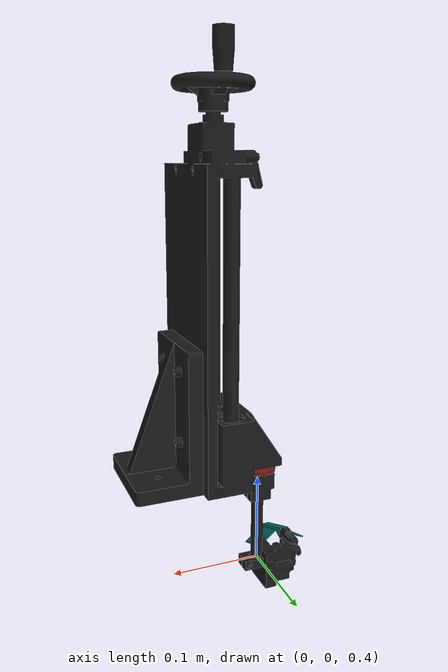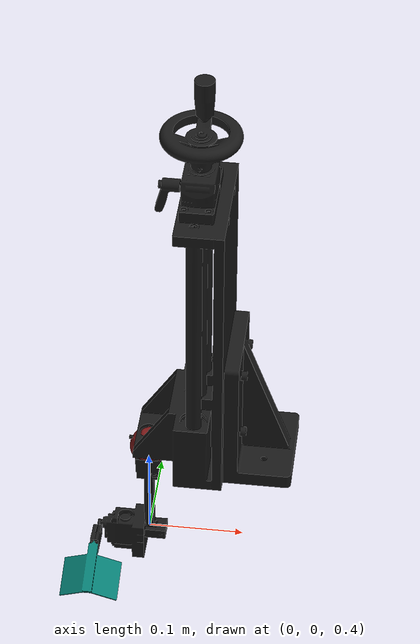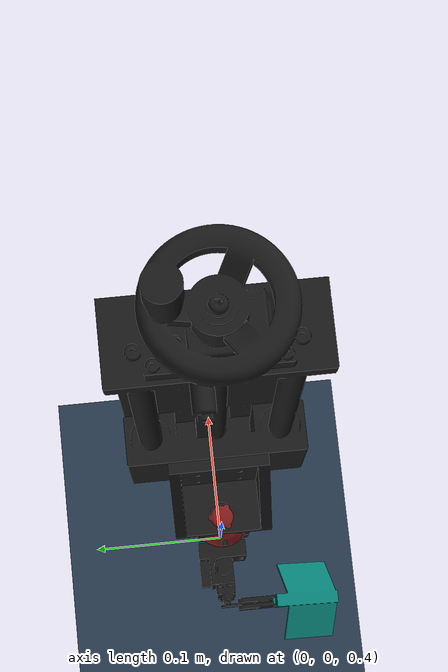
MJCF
<mujoco model="modular">

  <!-- Environment -->
  <option timestep="0.001" gravity="0 0 0" integrator="implicit" density="1025" viscosity="0.001" iterations="50" solver="Newton"/>
  <include file="environment.xml"/>

  <!-- Force sensor asset -->
  <include file="asset.xml"/>
  <asset>
    <mesh name="force_sensor" 	file="force_sensor.STL"/>
  </asset>

  <keyframe>
    <key name="init_pose"
         qpos="0.0 -0.3927"/>
  </keyframe>

  <!-- Robot model -->
  <worldbody>
    <!-- Force sensor -->
    <body name="force_sensor" pos="0 0 0.5" gravcomp="1.0">
      <site name="COM" pos="0 0 0.015" quat="1 0 0 0"/>
      <geom type ="sphere" pos="0 0 0.015" size="0.02" rgba=".5 .1 .1 1" contype="0" conaffinity="0"/>
      <geom class="metal" type="mesh" mesh="force_sensor" rgba=".1 .1 .1 1"/>

      <!-- Paddle Arm -->
      <body name="motor_paddle" pos="-0.055 0 -0.105" quat="0.5 0.5 0.5 0.5" gravcomp="0.95">
        <joint name="motor_hinge" pos="0 0 0" axis= "0 0 1" range="-0.7854 0.7854" limited="true"/>
        <geom class="PLA" type="mesh" mesh="motor_paddle" rgba=".1 .1 .1 1"/>
        <!-- Arm -->
        <body name="flA" pos="-0.025 0 0.003" quat="1 0 0 0" gravcomp="0.95">
          <geom class="PLA" type="mesh" mesh="flA" rgba=".1 .1 .1 1"/>
        </body>
        <body name="flB" pos="-0.025 0 -0.003" quat="1 0 0 0" gravcomp="0.95">
          <geom class="PLA" type="mesh" mesh="flB" rgba=".1 .1 .1 1"/>
        </body>
        <!-- Paddle -->
        <body name="paddle" pos="-0.0335 0.0015 0" quat="0.5555702 0 0 0.8314696" gravcomp="0.95">
          <joint  name="paddle_hinge" pos="0 0 0" axis= "0 0 1" range="-0.3927 0.3927" limited="true"
                  solreflimit="0.01 1" solimplimit=".90 .95 0.1"/>
          <geom class="PLA" type="mesh" mesh="paddle" rgba="0.02 0.5 0.46 1"
                contype="2" conaffinity="1" fluidshape="ellipsoid" fluidcoef="1.0 1.0 1.5 1.5 1"/>
        </body>
      </body>
    </body>
  </worldbody>

  <!-- Entire colony wrench -->
  <sensor>
    <force name="force" site="COM"/>
    <torque name="torque" site="COM"/>
  </sensor>

  <!-- Control -->
  <actuator>
    <position name="motor_pos" joint="motor_hinge" kp="2" kv=".1"/>
  </actuator>

</mujoco>

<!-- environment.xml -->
<mujoco>
	<asset>
		<texture name="texplane" type="2d" builtin="checker" rgb1=".2 .3 .4" rgb2=".1 0.15 0.2"
			width="512" height="512"/>
		<material name="MatGnd" reflectance="0.5" texture="texplane" texrepeat="1 1" texuniform="true"/>
	</asset>

	<asset>
		<texture type="skybox" builtin="gradient" rgb1="1 1 1" rgb2=".6 .8 1" width="256" height="256"/>
	</asset>

	<worldbody>
		<light pos="0 0 1000" castshadow="false"/>
		<light diffuse=".5 .5 .5" pos="0 0 5" castshadow="false"/>
		<geom name="world_frame" pos="0 0 0" size="20 20 10" material="MatGnd" type="plane" conaffinity="1" condim="3"/>
	</worldbody>
</mujoco>

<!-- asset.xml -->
<mujoco>
	<compiler angle="radian" meshdir="../meshes" autolimits="false"/>
	<compiler autolimits="true"/>

	<!-- Modular robot assets -->
	<asset>
		<mesh name="main_body" 		file="main_body.STL"/>
		<mesh name="flA" 			file="flA.STL"/>
		<mesh name="flB" 			file="flB.STL"/>
		<mesh name="paddle" 		file="paddle.STL"/>
		<mesh name="cap" 			file="cap.STL"/>
		<mesh name="motor" 			file="motor.STL"/>
		<mesh name="motor_paddle" 	file="motor_paddle.STL"/>
	</asset>

	<!-- Material feature -->
	<default class="main">
		<default class="PLA">
			<geom density="1240" rgba=".1 .1 .1 1"/>
		</default>
		<default class="ABS">
			<geom density="1100" rgba=".1 .1 .1 1"/>
		</default>
		<default class="metal">
			<geom density="20000" rgba=".1 .1 .1 1"/>
		</default>

	</default>

</mujoco>
